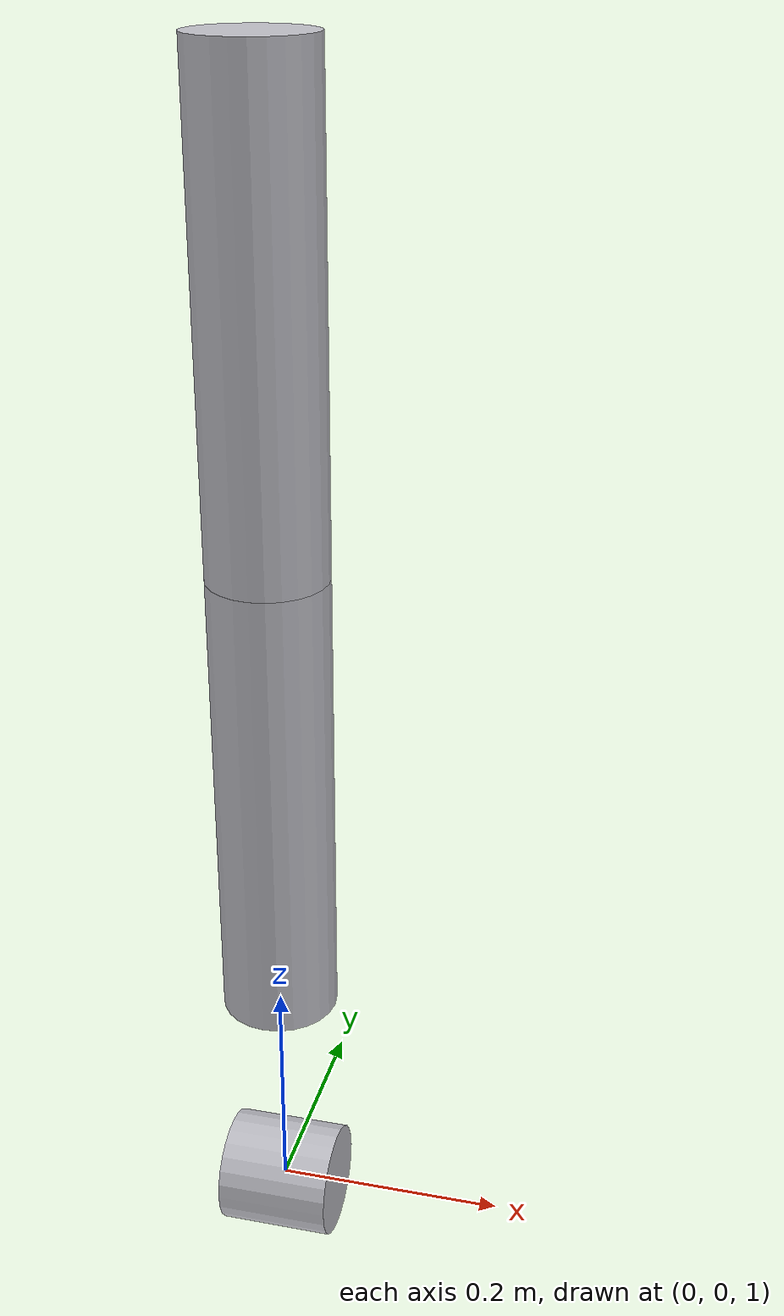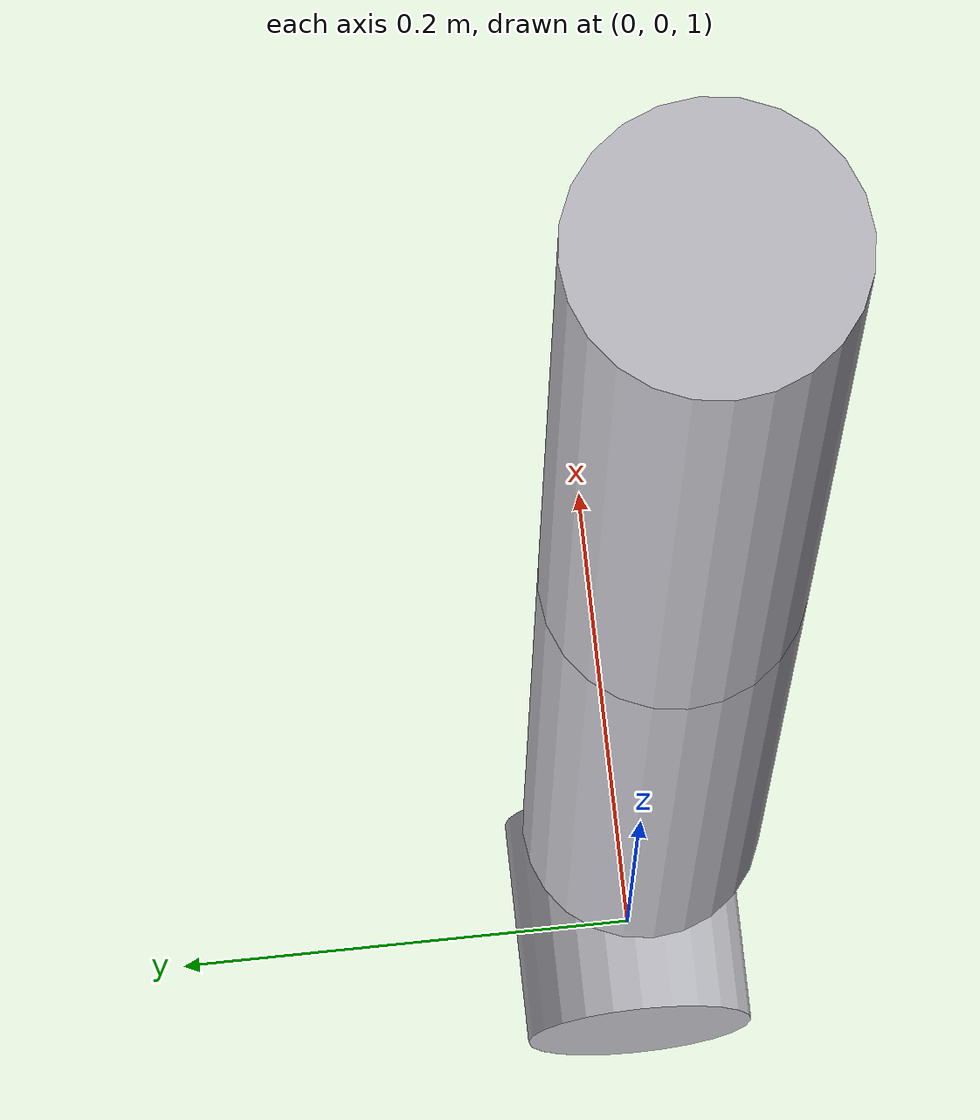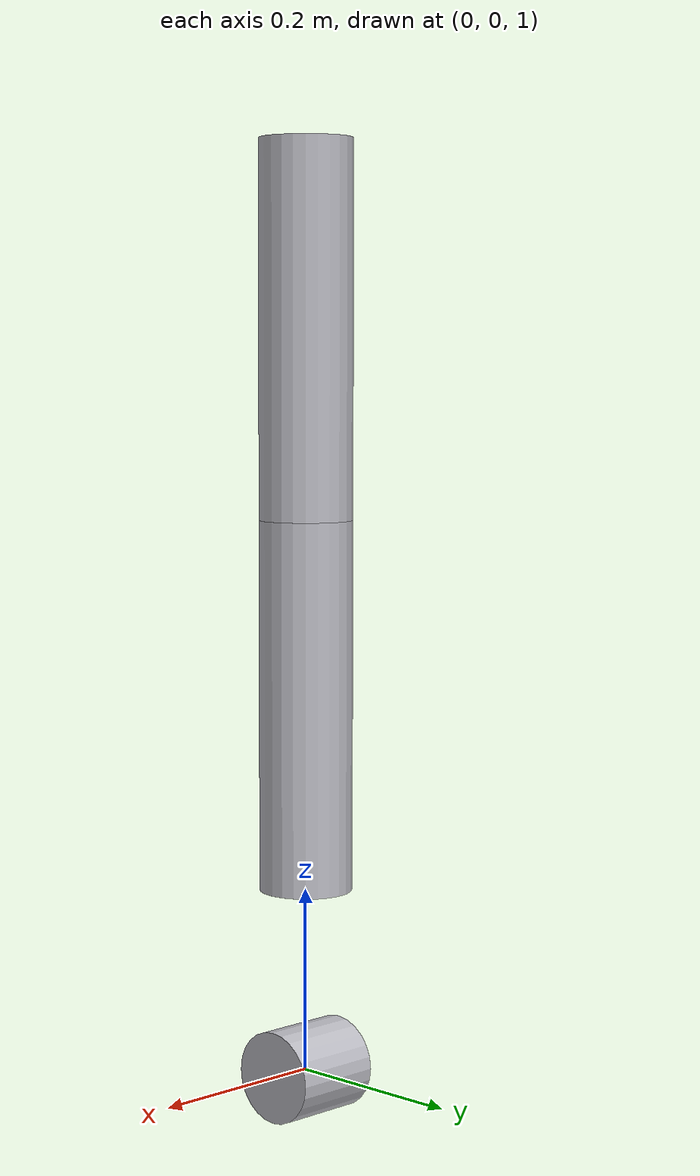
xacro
<?xml version="1.0"?>
<robot xmlns:xacro="http://www.ros.org/wiki/xacro" name="arm_2r">

    <!-- ARGS -->
    <xacro:arg name="USE_WITH_SIM" default="false" />
    <xacro:arg name="NAMESPACE" default="" />
    <xacro:arg name="YAML_PATH" default="" />

    <!-- INCLUDES -->
    <xacro:include filename="common.xacro" />

    <!-- PROPERTIES -->
    <xacro:property name="HALF_PI" value="1.57079632679"/>
    <xacro:property name="PI" value="3.1415926535897931"/>

    <!-- BASE LINK -->
    <link name="world"/>

    <joint name="arm_base_joint" type="fixed">
        <origin xyz="0 0 1" rpy="0 0 0"/>
        <parent link="world"/>
        <child link="arm_base"/>
    </joint>

    <!-- arm_base -->
    <link name="arm_base">
        <xacro:cylinder_inertial radius="0.05" length="0.1" mass="0.1">
            <origin xyz="0 0 0" rpy="0 ${HALF_PI} 0"/>
        </xacro:cylinder_inertial>

        <visual>
            <origin xyz="0 0 0" rpy="0 ${HALF_PI} 0" />
            <geometry>
                <cylinder radius="0.05" length="0.1"/>
            </geometry>
            <material name="silver"/>
        </visual>

        <collision>
            <origin xyz="0 0 0" rpy="0 ${HALF_PI} 0" />
            <geometry>
                <cylinder radius="0.05" length="0.1"/>
            </geometry>
        </collision>
    </link>

    <!-- LINK 1 -->
    <link name="link_1">
        <xacro:cylinder_inertial radius="0.05" length="0.4" mass="0.032">
            <origin xyz="0 0 0" rpy="0 0 0"/>
        </xacro:cylinder_inertial>

        <visual>
            <origin xyz="0 0 0" rpy="0 0 0" />
            <geometry>
                <cylinder radius="0.05" length="0.4"/>
            </geometry>
            <material name="silver"/>
        </visual>

        <collision>
            <origin xyz="0 0 0" rpy="0 0 0" />
            <geometry>
                <cylinder radius="0.05" length="0.4"/>
            </geometry>
        </collision>
    </link>

    <!-- LINK 2 -->
    <link name="link_2">
        <xacro:cylinder_inertial radius="0.05" length="0.4" mass="0.032">
            <origin xyz="0 0 0" rpy="0 0 0"/>
        </xacro:cylinder_inertial>

        <visual>
            <origin xyz="0 0 0" rpy="0 0 0" />
            <geometry>
                <cylinder radius="0.05" length="0.4"/>
            </geometry>
            <material name="silver"/>
        </visual>

        <collision>
            <origin xyz="0 0 0" rpy="0 0 0" />
            <geometry>
                <cylinder radius="0.05" length="0.4"/>
            </geometry>
        </collision>
    </link>

    <!-- JOINTS -->
    <joint name="joint_0" type="revolute">
        <origin xyz="0 0 0.4" rpy="0 0 0" />
        <parent link="arm_base" />
        <child link="link_1" />
        <axis xyz="1 0 0"/>
        <limit effort="2.0" velocity="5.0" lower="-1.57" upper="1.57"/>
    </joint>

    <joint name="joint_1" type="revolute">
        <origin xyz="0 0 0.4" rpy="0 0 0" />
        <parent link="link_1" />
        <child link="link_2" />
        <axis xyz="1 0 0"/>
        <limit effort="2.0" velocity="5.0" lower="-1.57" upper="1.57"/>
    </joint>

    <!-- ROS2 CONTROL -->
    <ros2_control name="arm_2r" type="system">
        <hardware>
            <xacro:if value="$(arg USE_WITH_SIM)">
                <plugin>gz_ros2_control/GazeboSimSystem</plugin>
            </xacro:if>
            <xacro:unless value="$(arg USE_WITH_SIM)">
                <plugin>dynamixel_hardware/DynamixelHardware</plugin>
                <param name="usb_port">/dev/docker/u2d2</param>
                <param name="baud_rate">4000000</param>
                <param name="control_mode">current</param>
            </xacro:unless>
        </hardware>

        <joint name="joint_0">
            <param name="id">1</param>
            <command_interface name="effort"/>  <!-- PID Effort Control -->
            <command_interface name="position"/> <!-- Position-based Control -->
            <state_interface name="position"/>
            <state_interface name="velocity"/>
            <state_interface name="effort"/>
        </joint>

        <joint name="joint_1">
            <param name="id">2</param>
            <command_interface name="effort"/>
            <command_interface name="position"/>
            <state_interface name="position"/>
            <state_interface name="velocity"/>
            <state_interface name="effort"/>
        </joint>
    </ros2_control>

    <!-- GAZEBO INTEGRATION -->
    <xacro:if value="$(arg USE_WITH_SIM)">
        <gazebo>
            <plugin filename="gz_ros2_control-system" name="gz_ros2_control::GazeboSimROS2ControlPlugin">
                <parameters>$(arg YAML_PATH)</parameters>
                <ros>
                    <namespace>/$(arg NAMESPACE)</namespace>
                </ros>
            </plugin>
        </gazebo>
    </xacro:if>

</robot>
